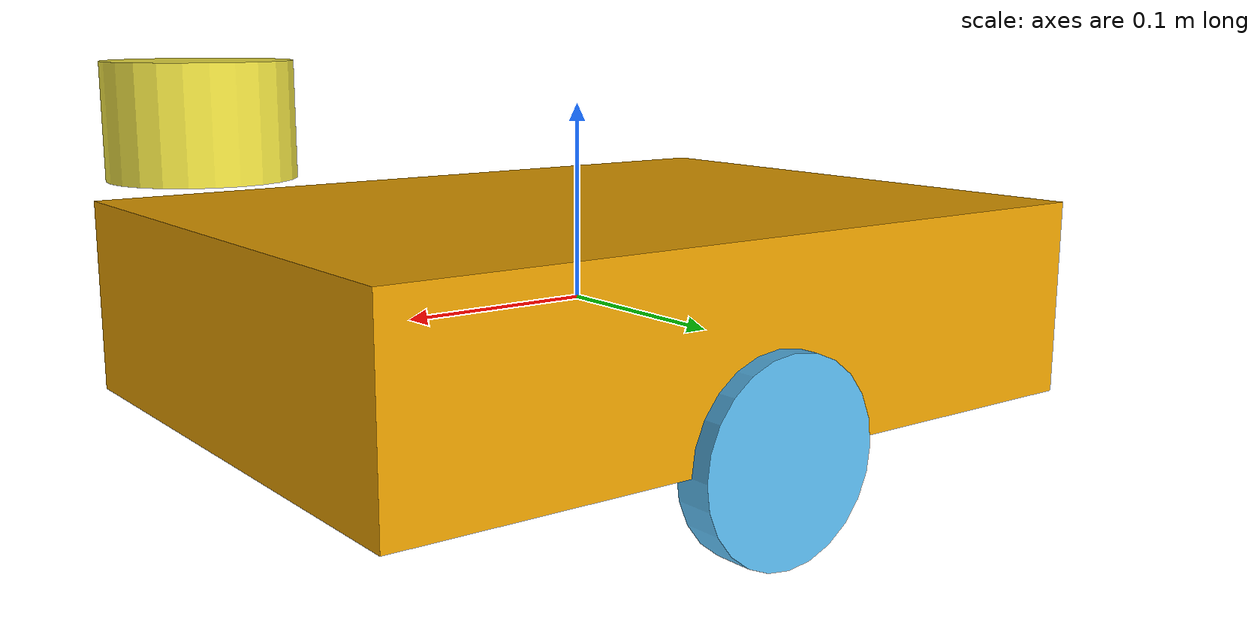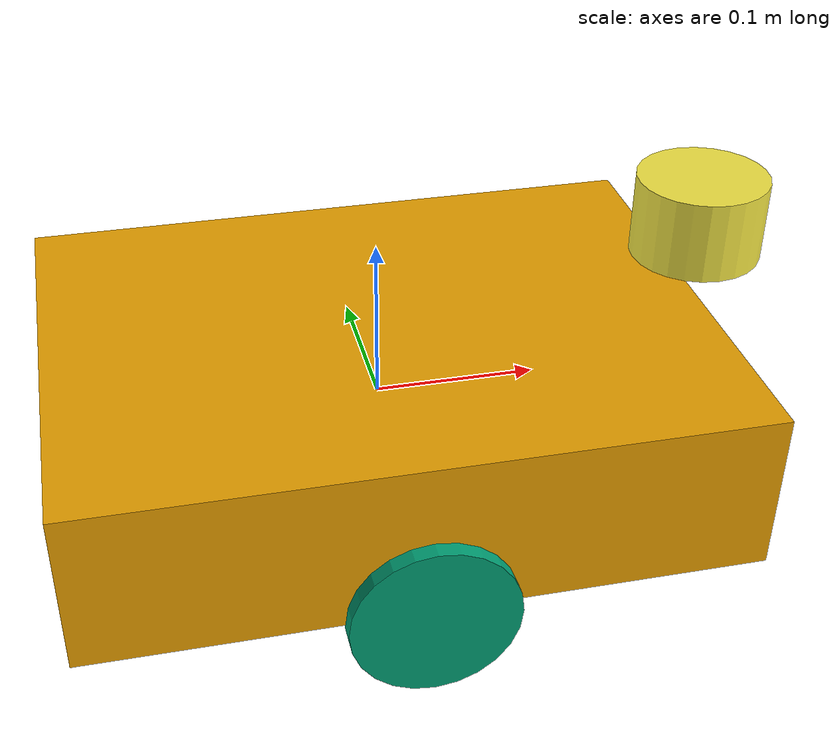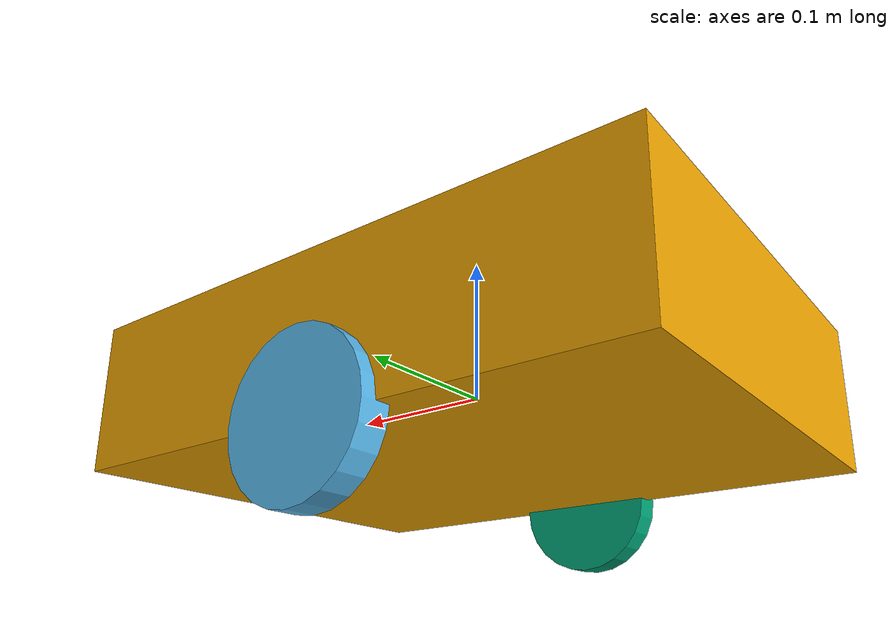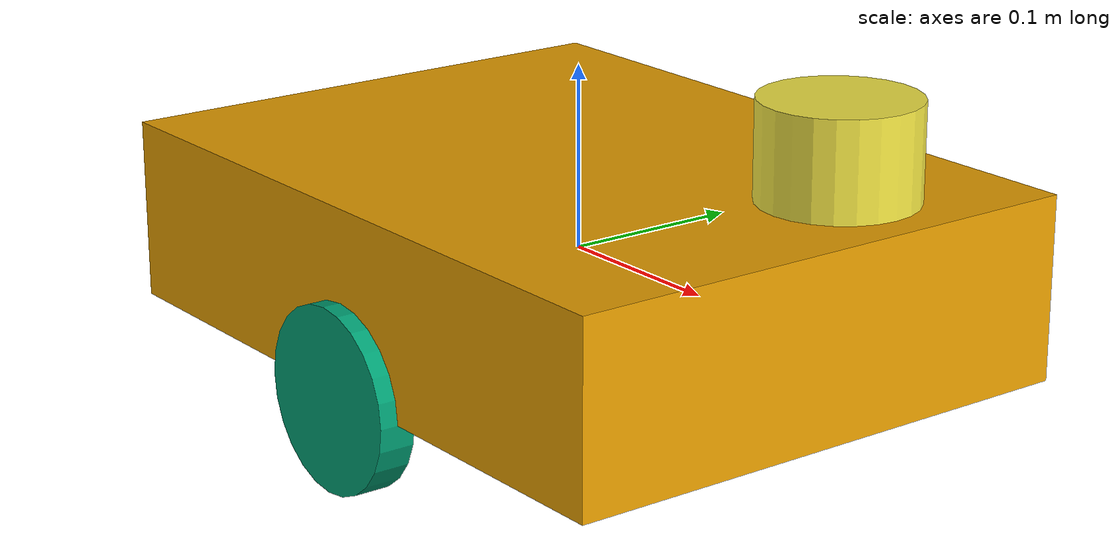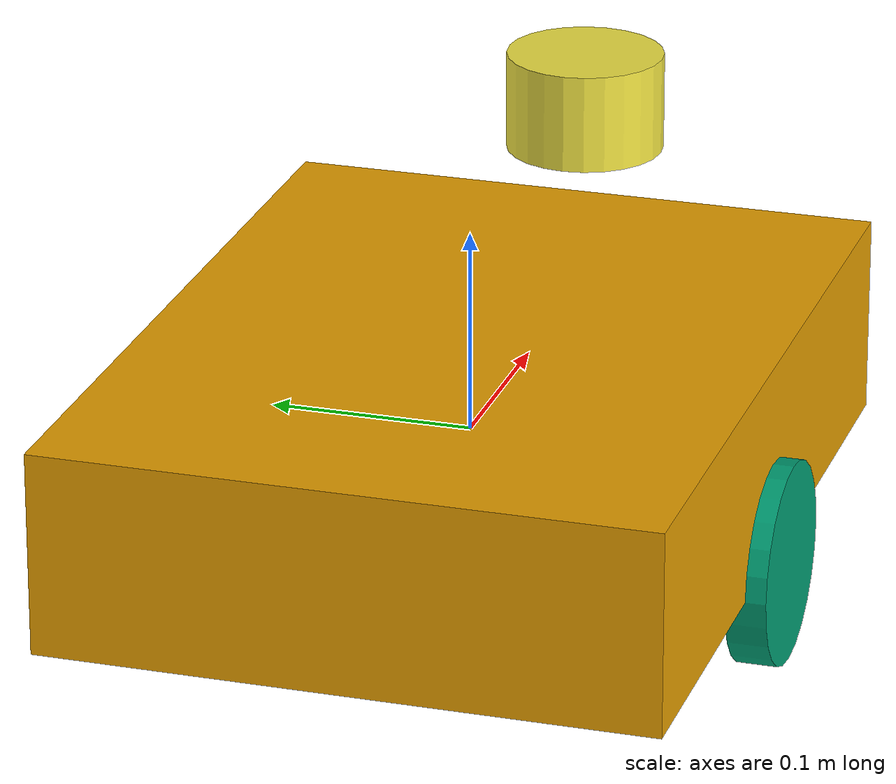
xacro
<?xml version="1.0"?>
<robot name="mobile_robot">

  <link name="base_link">
    <visual>
      <geometry>
        <box size="0.4 0.3 0.1"/>
      </geometry>
    </visual>
    <collision>
      <geometry>
        <box size="0.4 0.3 0.1"/>
      </geometry>
    </collision>
    <inertial>
      <mass value="5.0"/>
      <inertia ixx="0.1" iyy="0.1" izz="0.1"
               ixy="0.0" ixz="0.0" iyz="0.0"/>
    </inertial>
  </link>

  <link name="left_wheel">
    <visual>
      <geometry>
        <cylinder radius="0.05" length="0.02"/>
      </geometry>
      <origin rpy="1.5708 0 0"/>
    </visual>
    <collision>
      <geometry>
        <cylinder radius="0.05" length="0.02"/>
      </geometry>
      <origin rpy="1.5708 0 0"/>
    </collision>
    <inertial>
      <mass value="0.5"/>
      <inertia ixx="0.001" iyy="0.001" izz="0.001"
               ixy="0.0" ixz="0.0" iyz="0.0"/>
    </inertial>
  </link>

  <link name="right_wheel">
    <visual>
      <geometry>
        <cylinder radius="0.05" length="0.02"/>
      </geometry>
      <origin rpy="1.5708 0 0"/>
    </visual>
    <collision>
      <geometry>
        <cylinder radius="0.05" length="0.02"/>
      </geometry>
      <origin rpy="1.5708 0 0"/>
    </collision>
     <inertial>
      <mass value="0.5"/>
      <inertia ixx="0.001" iyy="0.001" izz="0.001"
               ixy="0.0" ixz="0.0" iyz="0.0"/>
    </inertial>
  </link>

  <link name="lidar_link">
    <visual>
      <geometry>
        <cylinder radius="0.04" length="0.05"/>
      </geometry>
    </visual>
    <collision>
      <geometry>
        <cylinder radius="0.04" length="0.05"/>
      </geometry>
    </collision>
  </link>

  <joint name="left_wheel_joint" type="continuous">
    <parent link="base_link"/>
    <child link="left_wheel"/>
    <origin xyz="0 0.15 -0.05"/>
    <axis xyz="0 1 0"/>
  </joint>

  <joint name="right_wheel_joint" type="continuous">
    <parent link="base_link"/>
    <child link="right_wheel"/>
    <origin xyz="0 -0.15 -0.05"/>
    <axis xyz="0 1 0"/>
  </joint>

  <joint name="lidar_joint" type="fixed">
    <parent link="base_link"/>
    <child link="lidar_link"/>
    <origin xyz="0.2 0 0.1"/>
  </joint>

  <gazebo>
    <plugin filename="gz-sim-diff-drive-system"
            name="gz::sim::systems::DiffDrive">
      <left_joint>left_wheel_joint</left_joint>
      <right_joint>right_wheel_joint</right_joint>
      <wheel_separation>0.30</wheel_separation>
      <wheel_radius>0.05</wheel_radius>
      <topic>cmd_vel</topic>
      <odom_topic>odom</odom_topic>
      <frame_id>odom</frame_id>
      <child_frame_id>base_link</child_frame_id>
    </plugin>
  </gazebo>

  <gazebo reference="lidar_link">
    <sensor name="lidar" type="gpu_lidar">
      <update_rate>10</update_rate>
      <lidar>
        <scan>
          <horizontal>
            <samples>720</samples>
            <min_angle>-1.5708</min_angle>
            <max_angle>1.5708</max_angle>
          </horizontal>
        </scan>
        <range>
          <min>0.12</min>
          <max>10.0</max>
        </range>
      </lidar>
      <visualize>true</visualize>
      <topic>scan</topic>
    </sensor>
  </gazebo>

</robot>
